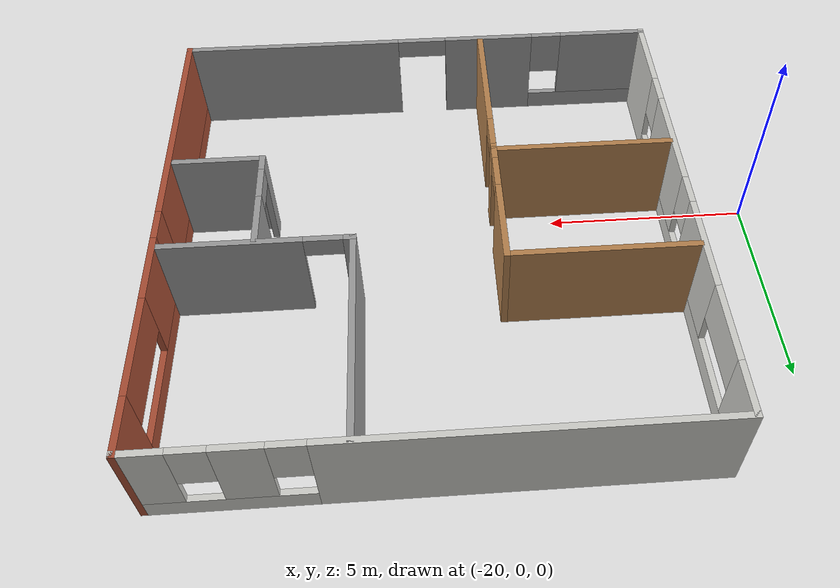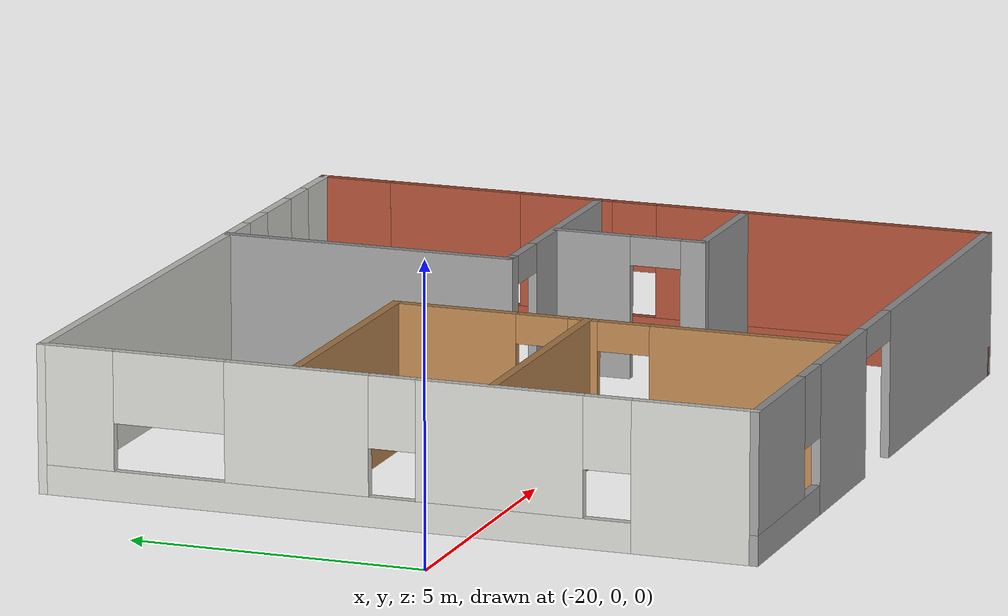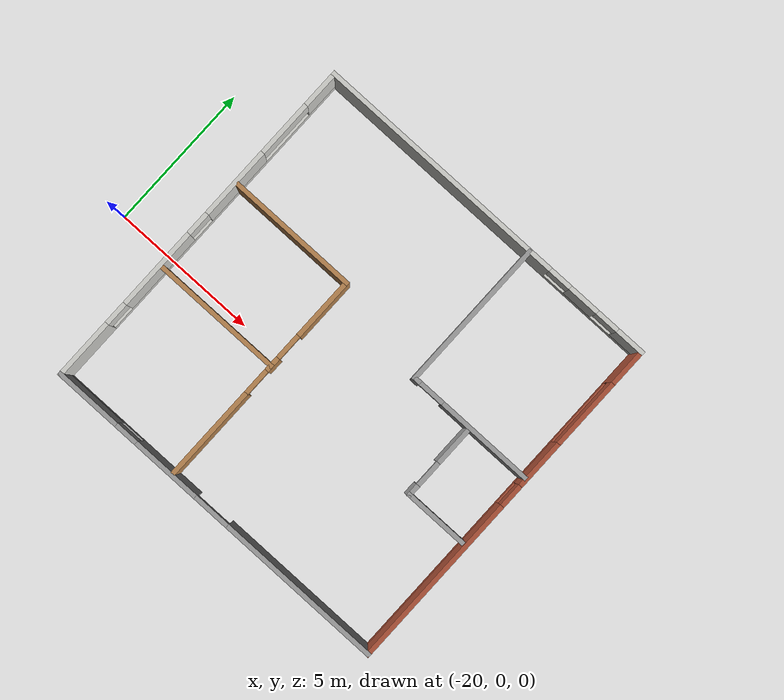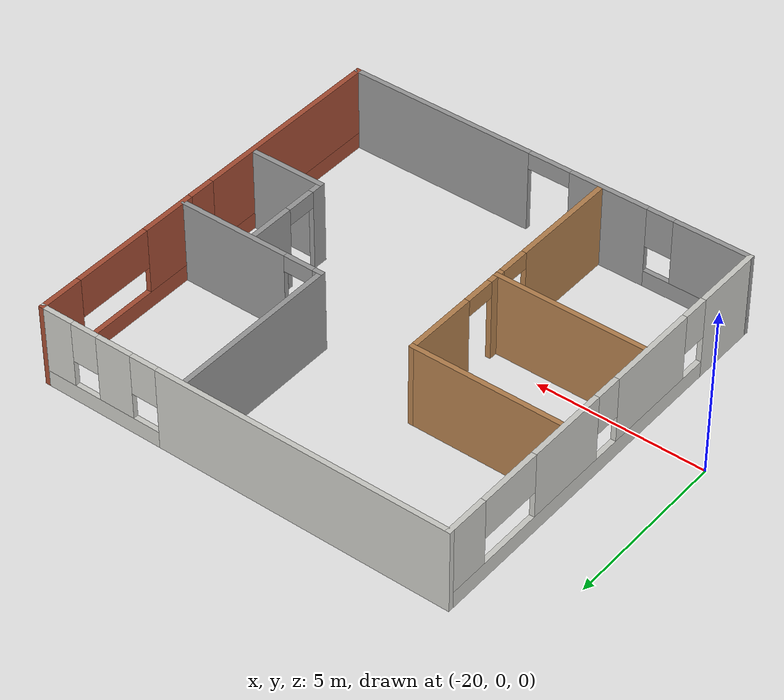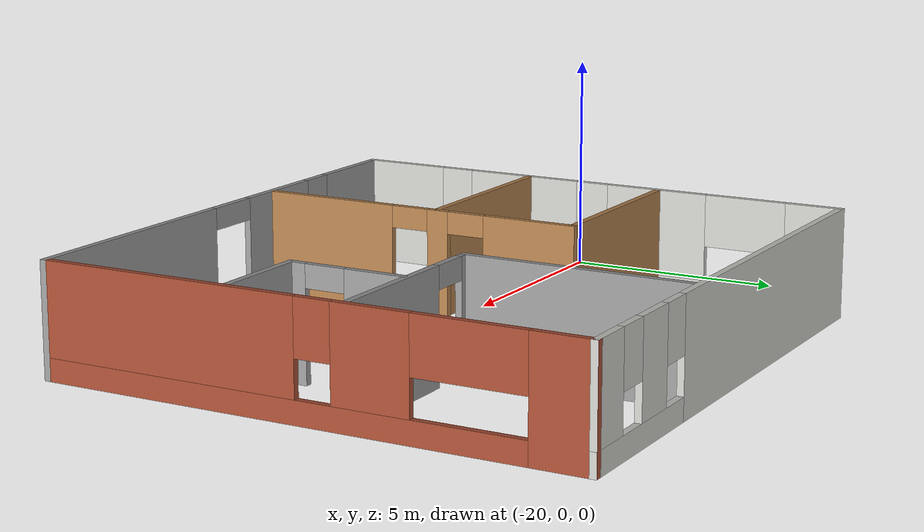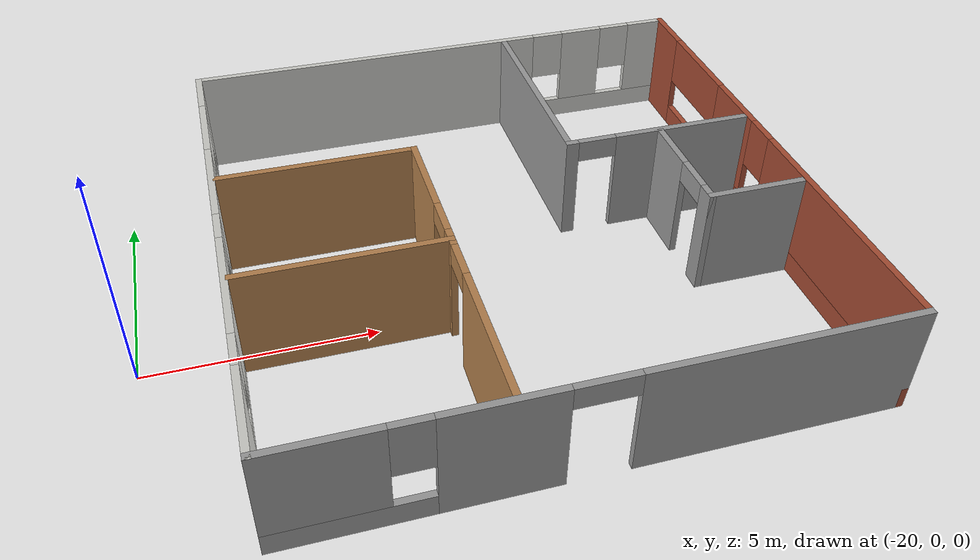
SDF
<?xml version='1.0'?>
<sdf version='1.6'>
  <model name='mybuilding'>
    <pose frame=''>-11.7599 1.31905 0 0 -0 0</pose>
    <link name='Wall_10'>
      <collision name='Wall_10_Collision'>
        <geometry>
          <box>
            <size>5.22277 0.15 2.5</size>
          </box>
        </geometry>
        <pose frame=''>0 0 1.25 0 -0 0</pose>
      </collision>
      <visual name='Wall_10_Visual'>
        <pose frame=''>0 0 1.25 0 -0 0</pose>
        <geometry>
          <box>
            <size>5.22277 0.15 2.5</size>
          </box>
        </geometry>
        <material>
          <script>
            <uri>file://media/materials/scripts/gazebo.material</uri>
            <name>Gazebo/Grey</name>
          </script>
          <ambient>1 1 1 1</ambient>
        </material>
        <meta>
          <layer>0</layer>
        </meta>
      </visual>
      <pose frame=''>1.70088 3.48445 0 0 -0 -1.5708</pose>
    </link>
    <link name='Wall_11'>
      <pose frame=''>3.89882 0.948097 0 0 -0 6.7e-05</pose>
      <visual name='Wall_11_Visual_0'>
        <pose frame=''>-2.12285 0 1.25 0 -0 0</pose>
        <geometry>
          <box>
            <size>0.300185 0.15 2.5</size>
          </box>
        </geometry>
        <material>
          <script>
            <uri>file://media/materials/scripts/gazebo.material</uri>
            <name>Gazebo/Grey</name>
          </script>
          <ambient>1 1 1 1</ambient>
        </material>
        <meta>
          <layer>0</layer>
        </meta>
      </visual>
      <collision name='Wall_11_Collision_0'>
        <geometry>
          <box>
            <size>0.300185 0.15 2.5</size>
          </box>
        </geometry>
        <pose frame=''>-2.12285 0 1.25 0 -0 0</pose>
      </collision>
      <visual name='Wall_11_Visual_1'>
        <pose frame=''>0.600093 0 1.25 0 -0 0</pose>
        <geometry>
          <box>
            <size>3.3457 0.15 2.5</size>
          </box>
        </geometry>
        <material>
          <script>
            <uri>file://media/materials/scripts/gazebo.material</uri>
            <name>Gazebo/Grey</name>
          </script>
          <ambient>1 1 1 1</ambient>
        </material>
        <meta>
          <layer>0</layer>
        </meta>
      </visual>
      <collision name='Wall_11_Collision_1'>
        <geometry>
          <box>
            <size>3.3457 0.15 2.5</size>
          </box>
        </geometry>
        <pose frame=''>0.600093 0 1.25 0 -0 0</pose>
      </collision>
      <visual name='Wall_11_Visual_2'>
        <pose frame=''>-1.52276 0 2.25 0 -0 0</pose>
        <geometry>
          <box>
            <size>0.9 0.15 0.5</size>
          </box>
        </geometry>
        <material>
          <script>
            <uri>file://media/materials/scripts/gazebo.material</uri>
            <name>Gazebo/Grey</name>
          </script>
          <ambient>1 1 1 1</ambient>
        </material>
        <meta>
          <layer>0</layer>
        </meta>
      </visual>
      <collision name='Wall_11_Collision_2'>
        <geometry>
          <box>
            <size>0.9 0.15 0.5</size>
          </box>
        </geometry>
        <pose frame=''>-1.52276 0 2.25 0 -0 0</pose>
      </collision>
    </link>
    <link name='Wall_13'>
      <pose frame=''>3.91343 -0.428268 0 0 -0 -1.5708</pose>
      <visual name='Wall_13_Visual_0'>
        <pose frame=''>-0.677503 0 1.25 0 -0 0</pose>
        <geometry>
          <box>
            <size>1.39499 0.15 2.5</size>
          </box>
        </geometry>
        <material>
          <script>
            <uri>file://media/materials/scripts/gazebo.material</uri>
            <name>Gazebo/Grey</name>
          </script>
          <ambient>1 1 1 1</ambient>
        </material>
        <meta>
          <layer>0</layer>
        </meta>
      </visual>
      <collision name='Wall_13_Collision_0'>
        <geometry>
          <box>
            <size>1.39499 0.15 2.5</size>
          </box>
        </geometry>
        <pose frame=''>-0.677503 0 1.25 0 -0 0</pose>
      </collision>
      <visual name='Wall_13_Visual_1'>
        <pose frame=''>1.1475 0 1.25 0 -0 0</pose>
        <geometry>
          <box>
            <size>0.455006 0.15 2.5</size>
          </box>
        </geometry>
        <material>
          <script>
            <uri>file://media/materials/scripts/gazebo.material</uri>
            <name>Gazebo/Grey</name>
          </script>
          <ambient>1 1 1 1</ambient>
        </material>
        <meta>
          <layer>0</layer>
        </meta>
      </visual>
      <collision name='Wall_13_Collision_1'>
        <geometry>
          <box>
            <size>0.455006 0.15 2.5</size>
          </box>
        </geometry>
        <pose frame=''>1.1475 0 1.25 0 -0 0</pose>
      </collision>
      <visual name='Wall_13_Visual_2'>
        <pose frame=''>0.469994 0 2.25 0 -0 0</pose>
        <geometry>
          <box>
            <size>0.9 0.15 0.5</size>
          </box>
        </geometry>
        <material>
          <script>
            <uri>file://media/materials/scripts/gazebo.material</uri>
            <name>Gazebo/Grey</name>
          </script>
          <ambient>1 1 1 1</ambient>
        </material>
        <meta>
          <layer>0</layer>
        </meta>
      </visual>
      <collision name='Wall_13_Collision_2'>
        <geometry>
          <box>
            <size>0.9 0.15 0.5</size>
          </box>
        </geometry>
        <pose frame=''>0.469994 0 2.25 0 -0 0</pose>
      </collision>
    </link>
    <link name='Wall_14'>
      <collision name='Wall_14_Collision'>
        <geometry>
          <box>
            <size>2.25 0.15 2.5</size>
          </box>
        </geometry>
        <pose frame=''>0 0 1.25 0 -0 0</pose>
      </collision>
      <visual name='Wall_14_Visual'>
        <pose frame=''>0 0 1.25 0 -0 0</pose>
        <geometry>
          <box>
            <size>2.25 0.15 2.5</size>
          </box>
        </geometry>
        <material>
          <script>
            <uri>file://media/materials/scripts/gazebo.material</uri>
            <name>Gazebo/Grey</name>
          </script>
          <ambient>1 1 1 1</ambient>
        </material>
        <meta>
          <layer>0</layer>
        </meta>
      </visual>
      <pose frame=''>4.96343 -1.72827 0 0 -0 0</pose>
    </link>
    <link name='Wall_2'>
      <pose frame=''>-0.000122 -6.05005 0 0 -0 3.14159</pose>
      <visual name='Wall_2_Visual_0'>
        <pose frame=''>-3.38985 0 1.25 0 -0 0</pose>
        <geometry>
          <box>
            <size>5.72029 0.15 2.5</size>
          </box>
        </geometry>
        <material>
          <script>
            <uri>file://media/materials/scripts/gazebo.material</uri>
            <name>Gazebo/Grey</name>
          </script>
          <ambient>1 1 1 1</ambient>
        </material>
        <meta>
          <layer>0</layer>
        </meta>
      </visual>
      <collision name='Wall_2_Collision_0'>
        <geometry>
          <box>
            <size>5.72029 0.15 2.5</size>
          </box>
        </geometry>
        <pose frame=''>-3.38985 0 1.25 0 -0 0</pose>
      </collision>
      <visual name='Wall_2_Visual_1'>
        <pose frame=''>1.94562 0 1.25 0 -0 0</pose>
        <geometry>
          <box>
            <size>2.38109 0.15 2.5</size>
          </box>
        </geometry>
        <material>
          <script>
            <uri>file://media/materials/scripts/gazebo.material</uri>
            <name>Gazebo/Grey</name>
          </script>
          <ambient>1 1 1 1</ambient>
        </material>
        <meta>
          <layer>0</layer>
        </meta>
      </visual>
      <collision name='Wall_2_Collision_1'>
        <geometry>
          <box>
            <size>2.38109 0.15 2.5</size>
          </box>
        </geometry>
        <pose frame=''>1.94562 0 1.25 0 -0 0</pose>
      </collision>
      <visual name='Wall_2_Visual_2'>
        <pose frame=''>4.69308 0 0.25 0 -0 0</pose>
        <geometry>
          <box>
            <size>3.11384 0.15 0.5</size>
          </box>
        </geometry>
        <material>
          <script>
            <uri>file://media/materials/scripts/gazebo.material</uri>
            <name>Gazebo/Grey</name>
          </script>
          <ambient>1 1 1 1</ambient>
        </material>
        <meta>
          <layer>0</layer>
        </meta>
      </visual>
      <collision name='Wall_2_Collision_2'>
        <geometry>
          <box>
            <size>3.11384 0.15 0.5</size>
          </box>
        </geometry>
        <pose frame=''>4.69308 0 0.25 0 -0 0</pose>
      </collision>
      <visual name='Wall_2_Visual_3'>
        <pose frame=''>5.09308 0 1.5 0 -0 0</pose>
        <geometry>
          <box>
            <size>2.31384 0.15 2</size>
          </box>
        </geometry>
        <material>
          <script>
            <uri>file://media/materials/scripts/gazebo.material</uri>
            <name>Gazebo/Grey</name>
          </script>
          <ambient>1 1 1 1</ambient>
        </material>
        <meta>
          <layer>0</layer>
        </meta>
      </visual>
      <collision name='Wall_2_Collision_3'>
        <geometry>
          <box>
            <size>2.31384 0.15 2</size>
          </box>
        </geometry>
        <pose frame=''>5.09308 0 1.5 0 -0 0</pose>
      </collision>
      <visual name='Wall_2_Visual_4'>
        <pose frame=''>3.53616 0 1.9 0 -0 0</pose>
        <geometry>
          <box>
            <size>0.8 0.15 1.2</size>
          </box>
        </geometry>
        <material>
          <script>
            <uri>file://media/materials/scripts/gazebo.material</uri>
            <name>Gazebo/Grey</name>
          </script>
          <ambient>1 1 1 1</ambient>
        </material>
        <meta>
          <layer>0</layer>
        </meta>
      </visual>
      <collision name='Wall_2_Collision_4'>
        <geometry>
          <box>
            <size>0.8 0.15 1.2</size>
          </box>
        </geometry>
        <pose frame=''>3.53616 0 1.9 0 -0 0</pose>
      </collision>
      <visual name='Wall_2_Visual_5'>
        <pose frame=''>0.112684 0 2.25 0 -0 0</pose>
        <geometry>
          <box>
            <size>1.28478 0.15 0.5</size>
          </box>
        </geometry>
        <material>
          <script>
            <uri>file://media/materials/scripts/gazebo.material</uri>
            <name>Gazebo/Grey</name>
          </script>
          <ambient>1 1 1 1</ambient>
        </material>
        <meta>
          <layer>0</layer>
        </meta>
      </visual>
      <collision name='Wall_2_Collision_5'>
        <geometry>
          <box>
            <size>1.28478 0.15 0.5</size>
          </box>
        </geometry>
        <pose frame=''>0.112684 0 2.25 0 -0 0</pose>
      </collision>
    </link>
    <link name='Wall_20'>
      <collision name='Wall_20_Collision'>
        <geometry>
          <box>
            <size>4.5 0.15 2.5</size>
          </box>
        </geometry>
        <pose frame=''>0 0 1.25 0 -0 0</pose>
      </collision>
      <visual name='Wall_20_Visual'>
        <pose frame=''>0 0 1.25 0 -0 0</pose>
        <geometry>
          <box>
            <size>4.5 0.15 2.5</size>
          </box>
        </geometry>
        <material>
          <script>
            <uri>file://media/materials/scripts/gazebo.material</uri>
            <name>Gazebo/Wood</name>
          </script>
          <ambient>0.996078 0.47451 0.0196078 1</ambient>
        </material>
        <meta>
          <layer>0</layer>
        </meta>
      </visual>
      <pose frame=''>-3.89337 -1.66258 0 0 -0 3.14159</pose>
    </link>
    <link name='Wall_3'>
      <pose frame=''>-6.17488 0 0 0 -0 1.57076</pose>
      <visual name='Wall_3_Visual_0'>
        <pose frame=''>-5.06792 0 1.25 0 -0 0</pose>
        <geometry>
          <box>
            <size>2.11415 0.15 2.5</size>
          </box>
        </geometry>
        <material>
          <script>
            <uri>file://media/materials/scripts/gazebo.material</uri>
            <name>Gazebo/CeilingTiled</name>
          </script>
          <ambient>0.435294 0.796078 0.67451 1</ambient>
        </material>
        <meta>
          <layer>0</layer>
        </meta>
      </visual>
      <collision name='Wall_3_Collision_0'>
        <geometry>
          <box>
            <size>2.11415 0.15 2.5</size>
          </box>
        </geometry>
        <pose frame=''>-5.06792 0 1.25 0 -0 0</pose>
      </collision>
      <visual name='Wall_3_Visual_1'>
        <pose frame=''>1.05708 0 0.25 0 -0 0</pose>
        <geometry>
          <box>
            <size>10.1358 0.15 0.5</size>
          </box>
        </geometry>
        <material>
          <script>
            <uri>file://media/materials/scripts/gazebo.material</uri>
            <name>Gazebo/CeilingTiled</name>
          </script>
          <ambient>0.435294 0.796078 0.67451 1</ambient>
        </material>
        <meta>
          <layer>0</layer>
        </meta>
      </visual>
      <collision name='Wall_3_Collision_1'>
        <geometry>
          <box>
            <size>10.1358 0.15 0.5</size>
          </box>
        </geometry>
        <pose frame=''>1.05708 0 0.25 0 -0 0</pose>
      </collision>
      <visual name='Wall_3_Visual_2'>
        <pose frame=''>-1.80063 0 1.5 0 -0 0</pose>
        <geometry>
          <box>
            <size>2.82044 0.15 2</size>
          </box>
        </geometry>
        <material>
          <script>
            <uri>file://media/materials/scripts/gazebo.material</uri>
            <name>Gazebo/CeilingTiled</name>
          </script>
          <ambient>0.435294 0.796078 0.67451 1</ambient>
        </material>
        <meta>
          <layer>0</layer>
        </meta>
      </visual>
      <collision name='Wall_3_Collision_2'>
        <geometry>
          <box>
            <size>2.82044 0.15 2</size>
          </box>
        </geometry>
        <pose frame=''>-1.80063 0 1.5 0 -0 0</pose>
      </collision>
      <visual name='Wall_3_Visual_3'>
        <pose frame=''>1.64316 0 1.5 0 -0 0</pose>
        <geometry>
          <box>
            <size>2.46714 0.15 2</size>
          </box>
        </geometry>
        <material>
          <script>
            <uri>file://media/materials/scripts/gazebo.material</uri>
            <name>Gazebo/CeilingTiled</name>
          </script>
          <ambient>0.435294 0.796078 0.67451 1</ambient>
        </material>
        <meta>
          <layer>0</layer>
        </meta>
      </visual>
      <collision name='Wall_3_Collision_3'>
        <geometry>
          <box>
            <size>2.46714 0.15 2</size>
          </box>
        </geometry>
        <pose frame=''>1.64316 0 1.5 0 -0 0</pose>
      </collision>
      <visual name='Wall_3_Visual_4'>
        <pose frame=''>5.46055 0 1.5 0 -0 0</pose>
        <geometry>
          <box>
            <size>1.3289 0.15 2</size>
          </box>
        </geometry>
        <material>
          <script>
            <uri>file://media/materials/scripts/gazebo.material</uri>
            <name>Gazebo/CeilingTiled</name>
          </script>
          <ambient>0.435294 0.796078 0.67451 1</ambient>
        </material>
        <meta>
          <layer>0</layer>
        </meta>
      </visual>
      <collision name='Wall_3_Collision_4'>
        <geometry>
          <box>
            <size>1.3289 0.15 2</size>
          </box>
        </geometry>
        <pose frame=''>5.46055 0 1.5 0 -0 0</pose>
      </collision>
      <visual name='Wall_3_Visual_5'>
        <pose frame=''>-3.61085 0 1.9 0 -0 0</pose>
        <geometry>
          <box>
            <size>0.8 0.15 1.2</size>
          </box>
        </geometry>
        <material>
          <script>
            <uri>file://media/materials/scripts/gazebo.material</uri>
            <name>Gazebo/CeilingTiled</name>
          </script>
          <ambient>0.435294 0.796078 0.67451 1</ambient>
        </material>
        <meta>
          <layer>0</layer>
        </meta>
      </visual>
      <collision name='Wall_3_Collision_5'>
        <geometry>
          <box>
            <size>0.8 0.15 1.2</size>
          </box>
        </geometry>
        <pose frame=''>-3.61085 0 1.9 0 -0 0</pose>
      </collision>
      <visual name='Wall_3_Visual_6'>
        <pose frame=''>0.009592 0 1.9 0 -0 0</pose>
        <geometry>
          <box>
            <size>0.8 0.15 1.2</size>
          </box>
        </geometry>
        <material>
          <script>
            <uri>file://media/materials/scripts/gazebo.material</uri>
            <name>Gazebo/CeilingTiled</name>
          </script>
          <ambient>0.435294 0.796078 0.67451 1</ambient>
        </material>
        <meta>
          <layer>0</layer>
        </meta>
      </visual>
      <collision name='Wall_3_Collision_6'>
        <geometry>
          <box>
            <size>0.8 0.15 1.2</size>
          </box>
        </geometry>
        <pose frame=''>0.009592 0 1.9 0 -0 0</pose>
      </collision>
      <visual name='Wall_3_Visual_7'>
        <pose frame=''>3.83642 0 1.9 0 -0 0</pose>
        <geometry>
          <box>
            <size>1.91936 0.15 1.2</size>
          </box>
        </geometry>
        <material>
          <script>
            <uri>file://media/materials/scripts/gazebo.material</uri>
            <name>Gazebo/CeilingTiled</name>
          </script>
          <ambient>0.435294 0.796078 0.67451 1</ambient>
        </material>
        <meta>
          <layer>0</layer>
        </meta>
      </visual>
      <collision name='Wall_3_Collision_7'>
        <geometry>
          <box>
            <size>1.91936 0.15 1.2</size>
          </box>
        </geometry>
        <pose frame=''>3.83642 0 1.9 0 -0 0</pose>
      </collision>
    </link>
    <link name='Wall_4'>
      <pose frame=''>0.000124 6.05 0 0 -0 -8e-06</pose>
      <visual name='Wall_4_Visual_0'>
        <pose frame=''>-1.86517 0 1.25 0 -0 0</pose>
        <geometry>
          <box>
            <size>8.76966 0.15 2.5</size>
          </box>
        </geometry>
        <material>
          <script>
            <uri>file://media/materials/scripts/gazebo.material</uri>
            <name>Gazebo/CeilingTiled</name>
          </script>
          <ambient>0.435294 0.796078 0.67451 1</ambient>
        </material>
        <meta>
          <layer>0</layer>
        </meta>
      </visual>
      <collision name='Wall_4_Collision_0'>
        <geometry>
          <box>
            <size>8.76966 0.15 2.5</size>
          </box>
        </geometry>
        <pose frame=''>-1.86517 0 1.25 0 -0 0</pose>
      </collision>
      <visual name='Wall_4_Visual_1'>
        <pose frame=''>4.38483 0 0.25 0 -0 0</pose>
        <geometry>
          <box>
            <size>3.73034 0.15 0.5</size>
          </box>
        </geometry>
        <material>
          <script>
            <uri>file://media/materials/scripts/gazebo.material</uri>
            <name>Gazebo/CeilingTiled</name>
          </script>
          <ambient>0.435294 0.796078 0.67451 1</ambient>
        </material>
        <meta>
          <layer>0</layer>
        </meta>
      </visual>
      <collision name='Wall_4_Collision_1'>
        <geometry>
          <box>
            <size>3.73034 0.15 0.5</size>
          </box>
        </geometry>
        <pose frame=''>4.38483 0 0.25 0 -0 0</pose>
      </collision>
      <visual name='Wall_4_Visual_2'>
        <pose frame=''>3.86412 0 1.5 0 -0 0</pose>
        <geometry>
          <box>
            <size>1.08893 0.15 2</size>
          </box>
        </geometry>
        <material>
          <script>
            <uri>file://media/materials/scripts/gazebo.material</uri>
            <name>Gazebo/CeilingTiled</name>
          </script>
          <ambient>0.435294 0.796078 0.67451 1</ambient>
        </material>
        <meta>
          <layer>0</layer>
        </meta>
      </visual>
      <collision name='Wall_4_Collision_2'>
        <geometry>
          <box>
            <size>1.08893 0.15 2</size>
          </box>
        </geometry>
        <pose frame=''>3.86412 0 1.5 0 -0 0</pose>
      </collision>
      <visual name='Wall_4_Visual_3'>
        <pose frame=''>5.72929 0 1.5 0 -0 0</pose>
        <geometry>
          <box>
            <size>1.04141 0.15 2</size>
          </box>
        </geometry>
        <material>
          <script>
            <uri>file://media/materials/scripts/gazebo.material</uri>
            <name>Gazebo/CeilingTiled</name>
          </script>
          <ambient>0.435294 0.796078 0.67451 1</ambient>
        </material>
        <meta>
          <layer>0</layer>
        </meta>
      </visual>
      <collision name='Wall_4_Collision_3'>
        <geometry>
          <box>
            <size>1.04141 0.15 2</size>
          </box>
        </geometry>
        <pose frame=''>5.72929 0 1.5 0 -0 0</pose>
      </collision>
      <visual name='Wall_4_Visual_4'>
        <pose frame=''>2.91966 0 1.9 0 -0 0</pose>
        <geometry>
          <box>
            <size>0.8 0.15 1.2</size>
          </box>
        </geometry>
        <material>
          <script>
            <uri>file://media/materials/scripts/gazebo.material</uri>
            <name>Gazebo/CeilingTiled</name>
          </script>
          <ambient>0.435294 0.796078 0.67451 1</ambient>
        </material>
        <meta>
          <layer>0</layer>
        </meta>
      </visual>
      <collision name='Wall_4_Collision_4'>
        <geometry>
          <box>
            <size>0.8 0.15 1.2</size>
          </box>
        </geometry>
        <pose frame=''>2.91966 0 1.9 0 -0 0</pose>
      </collision>
      <visual name='Wall_4_Visual_5'>
        <pose frame=''>4.80859 0 1.9 0 -0 0</pose>
        <geometry>
          <box>
            <size>0.8 0.15 1.2</size>
          </box>
        </geometry>
        <material>
          <script>
            <uri>file://media/materials/scripts/gazebo.material</uri>
            <name>Gazebo/CeilingTiled</name>
          </script>
          <ambient>0.435294 0.796078 0.67451 1</ambient>
        </material>
        <meta>
          <layer>0</layer>
        </meta>
      </visual>
      <collision name='Wall_4_Collision_5'>
        <geometry>
          <box>
            <size>0.8 0.15 1.2</size>
          </box>
        </geometry>
        <pose frame=''>4.80859 0 1.9 0 -0 0</pose>
      </collision>
    </link>
    <link name='Wall_5'>
      <pose frame=''>6.17488 -5.1e-05 0 0 -0 -1.5708</pose>
      <visual name='Wall_5_Visual_0'>
        <pose frame=''>-5.45479 0 1.25 0 -0 0</pose>
        <geometry>
          <box>
            <size>1.34043 0.15 2.5</size>
          </box>
        </geometry>
        <material>
          <script>
            <uri>file://media/materials/scripts/gazebo.material</uri>
            <name>Gazebo/Bricks</name>
          </script>
          <ambient>1 1 1 1</ambient>
        </material>
        <meta>
          <layer>0</layer>
        </meta>
      </visual>
      <collision name='Wall_5_Collision_0'>
        <geometry>
          <box>
            <size>1.34043 0.15 2.5</size>
          </box>
        </geometry>
        <pose frame=''>-5.45479 0 1.25 0 -0 0</pose>
      </collision>
      <visual name='Wall_5_Visual_1'>
        <pose frame=''>0.670215 0 0.25 0 -0 0</pose>
        <geometry>
          <box>
            <size>10.9096 0.15 0.5</size>
          </box>
        </geometry>
        <material>
          <script>
            <uri>file://media/materials/scripts/gazebo.material</uri>
            <name>Gazebo/Bricks</name>
          </script>
          <ambient>1 1 1 1</ambient>
        </material>
        <meta>
          <layer>0</layer>
        </meta>
      </visual>
      <collision name='Wall_5_Collision_1'>
        <geometry>
          <box>
            <size>10.9096 0.15 0.5</size>
          </box>
        </geometry>
        <pose frame=''>0.670215 0 0.25 0 -0 0</pose>
      </collision>
      <visual name='Wall_5_Visual_2'>
        <pose frame=''>-1.5231 0 1.5 0 -0 0</pose>
        <geometry>
          <box>
            <size>1.69603 0.15 2</size>
          </box>
        </geometry>
        <material>
          <script>
            <uri>file://media/materials/scripts/gazebo.material</uri>
            <name>Gazebo/Bricks</name>
          </script>
          <ambient>1 1 1 1</ambient>
        </material>
        <meta>
          <layer>0</layer>
        </meta>
      </visual>
      <collision name='Wall_5_Collision_2'>
        <geometry>
          <box>
            <size>1.69603 0.15 2</size>
          </box>
        </geometry>
        <pose frame=''>-1.5231 0 1.5 0 -0 0</pose>
      </collision>
      <visual name='Wall_5_Visual_3'>
        <pose frame=''>3.12496 0 1.5 0 -0 0</pose>
        <geometry>
          <box>
            <size>6.00009 0.15 2</size>
          </box>
        </geometry>
        <material>
          <script>
            <uri>file://media/materials/scripts/gazebo.material</uri>
            <name>Gazebo/Bricks</name>
          </script>
          <ambient>1 1 1 1</ambient>
        </material>
        <meta>
          <layer>0</layer>
        </meta>
      </visual>
      <collision name='Wall_5_Collision_3'>
        <geometry>
          <box>
            <size>6.00009 0.15 2</size>
          </box>
        </geometry>
        <pose frame=''>3.12496 0 1.5 0 -0 0</pose>
      </collision>
      <visual name='Wall_5_Visual_4'>
        <pose frame=''>-3.57784 0 1.9 0 -0 0</pose>
        <geometry>
          <box>
            <size>2.41345 0.15 1.2</size>
          </box>
        </geometry>
        <material>
          <script>
            <uri>file://media/materials/scripts/gazebo.material</uri>
            <name>Gazebo/Bricks</name>
          </script>
          <ambient>1 1 1 1</ambient>
        </material>
        <meta>
          <layer>0</layer>
        </meta>
      </visual>
      <collision name='Wall_5_Collision_4'>
        <geometry>
          <box>
            <size>2.41345 0.15 1.2</size>
          </box>
        </geometry>
        <pose frame=''>-3.57784 0 1.9 0 -0 0</pose>
      </collision>
      <visual name='Wall_5_Visual_5'>
        <pose frame=''>-0.275087 0 1.9 0 -0 0</pose>
        <geometry>
          <box>
            <size>0.8 0.15 1.2</size>
          </box>
        </geometry>
        <material>
          <script>
            <uri>file://media/materials/scripts/gazebo.material</uri>
            <name>Gazebo/Bricks</name>
          </script>
          <ambient>1 1 1 1</ambient>
        </material>
        <meta>
          <layer>0</layer>
        </meta>
      </visual>
      <collision name='Wall_5_Collision_5'>
        <geometry>
          <box>
            <size>0.8 0.15 1.2</size>
          </box>
        </geometry>
        <pose frame=''>-0.275087 0 1.9 0 -0 0</pose>
      </collision>
    </link>
    <link name='Wall_7'>
      <collision name='Wall_7_Collision'>
        <geometry>
          <box>
            <size>4.5 0.15 2.5</size>
          </box>
        </geometry>
        <pose frame=''>0 0 1.25 0 -0 0</pose>
      </collision>
      <visual name='Wall_7_Visual'>
        <pose frame=''>0 0 1.25 0 -0 0</pose>
        <geometry>
          <box>
            <size>4.5 0.15 2.5</size>
          </box>
        </geometry>
        <material>
          <script>
            <uri>file://media/materials/scripts/gazebo.material</uri>
            <name>Gazebo/Wood</name>
          </script>
          <ambient>0.996078 0.47451 0.0196078 1</ambient>
        </material>
        <meta>
          <layer>0</layer>
        </meta>
      </visual>
      <pose frame=''>-3.8879 1.67627 0 0 -0 0</pose>
    </link>
    <link name='Wall_8'>
      <pose frame=''>-1.7129 -2.12372 0 0 -0 -1.5708</pose>
      <visual name='Wall_8_Visual_0'>
        <pose frame=''>-2.77523 0 1.25 0 -0 0</pose>
        <geometry>
          <box>
            <size>2.19954 0.15 2.5</size>
          </box>
        </geometry>
        <material>
          <script>
            <uri>file://media/materials/scripts/gazebo.material</uri>
            <name>Gazebo/Wood</name>
          </script>
          <ambient>0.996078 0.47451 0.0196078 1</ambient>
        </material>
        <meta>
          <layer>0</layer>
        </meta>
      </visual>
      <collision name='Wall_8_Collision_0'>
        <geometry>
          <box>
            <size>2.19954 0.15 2.5</size>
          </box>
        </geometry>
        <pose frame=''>-2.77523 0 1.25 0 -0 0</pose>
      </collision>
      <visual name='Wall_8_Visual_1'>
        <pose frame=''>-0.521488 0 1.25 0 -0 0</pose>
        <geometry>
          <box>
            <size>0.50795 0.15 2.5</size>
          </box>
        </geometry>
        <material>
          <script>
            <uri>file://media/materials/scripts/gazebo.material</uri>
            <name>Gazebo/Wood</name>
          </script>
          <ambient>0.996078 0.47451 0.0196078 1</ambient>
        </material>
        <meta>
          <layer>0</layer>
        </meta>
      </visual>
      <collision name='Wall_8_Collision_1'>
        <geometry>
          <box>
            <size>0.50795 0.15 2.5</size>
          </box>
        </geometry>
        <pose frame=''>-0.521488 0 1.25 0 -0 0</pose>
      </collision>
      <visual name='Wall_8_Visual_2'>
        <pose frame=''>2.25374 0 1.25 0 -0 0</pose>
        <geometry>
          <box>
            <size>3.24251 0.15 2.5</size>
          </box>
        </geometry>
        <material>
          <script>
            <uri>file://media/materials/scripts/gazebo.material</uri>
            <name>Gazebo/Wood</name>
          </script>
          <ambient>0.996078 0.47451 0.0196078 1</ambient>
        </material>
        <meta>
          <layer>0</layer>
        </meta>
      </visual>
      <collision name='Wall_8_Collision_2'>
        <geometry>
          <box>
            <size>3.24251 0.15 2.5</size>
          </box>
        </geometry>
        <pose frame=''>2.25374 0 1.25 0 -0 0</pose>
      </collision>
      <visual name='Wall_8_Visual_3'>
        <pose frame=''>-1.22546 0 2.25 0 -0 0</pose>
        <geometry>
          <box>
            <size>0.9 0.15 0.5</size>
          </box>
        </geometry>
        <material>
          <script>
            <uri>file://media/materials/scripts/gazebo.material</uri>
            <name>Gazebo/Wood</name>
          </script>
          <ambient>0.996078 0.47451 0.0196078 1</ambient>
        </material>
        <meta>
          <layer>0</layer>
        </meta>
      </visual>
      <collision name='Wall_8_Collision_3'>
        <geometry>
          <box>
            <size>0.9 0.15 0.5</size>
          </box>
        </geometry>
        <pose frame=''>-1.22546 0 2.25 0 -0 0</pose>
      </collision>
      <visual name='Wall_8_Visual_4'>
        <pose frame=''>0.182487 0 2.25 0 -0 0</pose>
        <geometry>
          <box>
            <size>0.9 0.15 0.5</size>
          </box>
        </geometry>
        <material>
          <script>
            <uri>file://media/materials/scripts/gazebo.material</uri>
            <name>Gazebo/Wood</name>
          </script>
          <ambient>0.996078 0.47451 0.0196078 1</ambient>
        </material>
        <meta>
          <layer>0</layer>
        </meta>
      </visual>
      <collision name='Wall_8_Collision_4'>
        <geometry>
          <box>
            <size>0.9 0.15 0.5</size>
          </box>
        </geometry>
        <pose frame=''>0.182487 0 2.25 0 -0 0</pose>
      </collision>
    </link>
    <static>1</static>
  </model>
</sdf>
